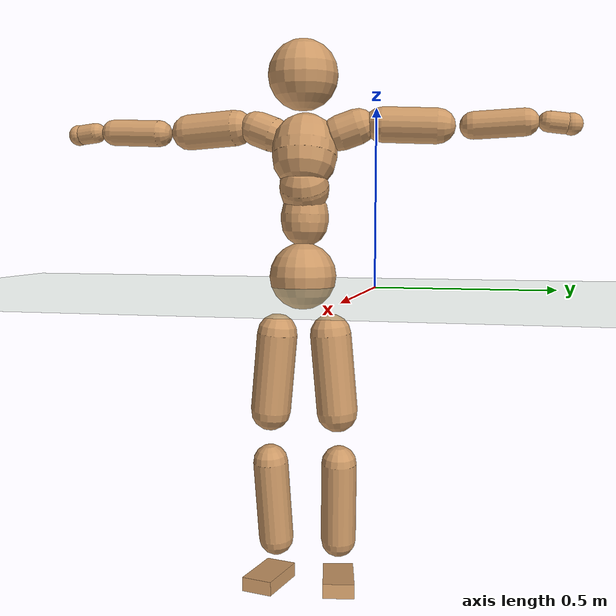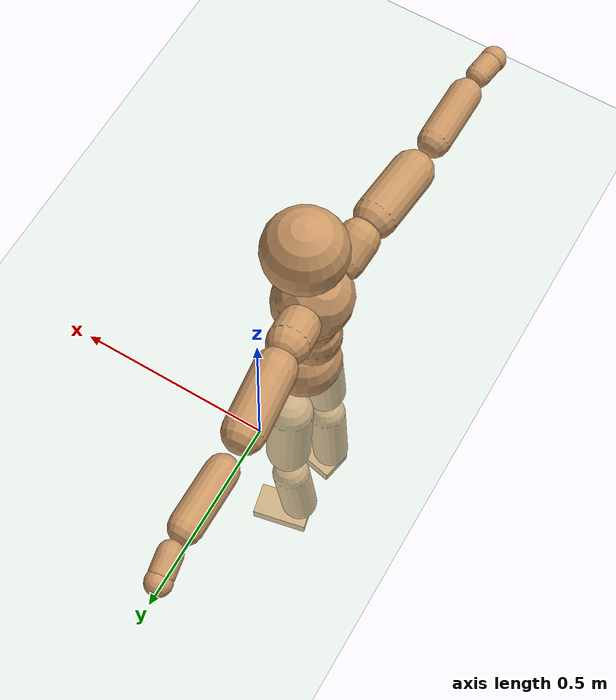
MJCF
<mujoco model="humanoid">
  <compiler coordinate="local"/>
  <default>
    <joint damping="0.0" armature="0.01" stiffness="0.0" limited="true"/>
    <geom conaffinity="1" condim="3" contype="7" margin="0.001" rgba="0.8 0.6 .4 1"/>
  </default>
  <asset>
    <texture type="skybox" builtin="gradient" rgb1=".4 .5 .6" rgb2="0 0 0" width="100" height="100"/>
    <texture builtin="flat" height="1278" mark="cross" markrgb="1 1 1" name="texgeom" random="0.01" rgb1="0.8 0.6 0.4" rgb2="0.8 0.6 0.4" type="cube" width="127"/>
    <texture builtin="checker" height="100" name="texplane" rgb1="0 0 0" rgb2="0.8 0.8 0.8" type="2d" width="100"/>
    <material name="MatPlane" reflectance="0.5" shininess="1" specular="1" texrepeat="60 60" texture="texplane"/>
    <material name="geom" texture="texgeom" texuniform="true"/>
  </asset>
  <worldbody>
    <light cutoff="100" diffuse="1 1 1" dir="-0 0 -1.3" directional="true" exponent="1" pos="0 0 1.3" specular=".1 .1 .1"/>
    <geom conaffinity="1" condim="3" name="floor" pos="0 0 0" rgba="0.8 0.9 0.8 1" size="100 100 .2" type="plane" material="MatPlane"/>
    <body name="Pelvis" pos="-0.0007 -0.2122 0.029">
      <freejoint name="Pelvis"/>
      <geom type="sphere" contype="1" conaffinity="1" density="500" size="0.0970" pos="0.0000 0.0000 0.0000" name="Pelvis"/>
      <body name="L_Hip" pos="-0.0071 0.0741 -0.0929">
        <joint name="L_Hip_x" type="hinge" pos="0 0 0" axis="1 0 0" stiffness="800" damping="80" armature="0.02" range="-180.0000 180.0000"/>
        <joint name="L_Hip_y" type="hinge" pos="0 0 0" axis="0 1 0" stiffness="800" damping="80" armature="0.02" range="-180.0000 180.0000"/>
        <joint name="L_Hip_z" type="hinge" pos="0 0 0" axis="0 0 1" stiffness="800" damping="80" armature="0.02" range="-180.0000 180.0000"/>
        <geom type="capsule" contype="1" conaffinity="1" density="500" fromto="-0.0023 0.0062 -0.0766 -0.0094 0.0250 -0.3063" size="0.0604" name="L_Hip"/>
        <body name="L_Knee" pos="-0.0117 0.0312 -0.3829">
          <joint name="L_Knee_x" type="hinge" pos="0 0 0" axis="1 0 0" stiffness="800" damping="80" armature="0.02" range="-180.0000 180.0000"/>
          <joint name="L_Knee_y" type="hinge" pos="0 0 0" axis="0 1 0" stiffness="800" damping="80" armature="0.02" range="-180.0000 180.0000"/>
          <joint name="L_Knee_z" type="hinge" pos="0 0 0" axis="0 0 1" stiffness="800" damping="80" armature="0.02" range="-180.0000 180.0000"/>
          <geom type="capsule" contype="1" conaffinity="1" density="500" fromto="-0.0092 -0.0024 -0.0818 -0.0367 -0.0096 -0.3271" size="0.0524" name="L_Knee"/>
          <body name="L_Ankle" pos="-0.0458 -0.012 -0.4089">
            <joint name="L_Ankle_x" type="hinge" pos="0 0 0" axis="1 0 0" stiffness="800" damping="80" armature="0.02" range="-180.0000 180.0000"/>
            <joint name="L_Ankle_y" type="hinge" pos="0 0 0" axis="0 1 0" stiffness="800" damping="80" armature="0.02" range="-180.0000 180.0000"/>
            <joint name="L_Ankle_z" type="hinge" pos="0 0 0" axis="0 0 1" stiffness="800" damping="80" armature="0.02" range="-180.0000 180.0000"/>
            <geom type="box" contype="1" conaffinity="1" density="500" pos="0.0576 0.0125 -0.0291" size="0.0804 0.0461 0.0218" quat="0.9943 0.0000 0.0000 0.1070" name="L_Ankle"/>
            <body name="L_Toe" pos="0.1152 0.0251 -0.0582">
              <joint name="L_Toe_x" type="hinge" pos="0 0 0" axis="1 0 0" stiffness="500" damping="50" armature="0.02" range="-180.0000 180.0000"/>
              <joint name="L_Toe_y" type="hinge" pos="0 0 0" axis="0 1 0" stiffness="500" damping="50" armature="0.02" range="-180.0000 180.0000"/>
              <joint name="L_Toe_z" type="hinge" pos="0 0 0" axis="0 0 1" stiffness="500" damping="50" armature="0.02" range="-180.0000 180.0000"/>
              <geom type="box" contype="1" conaffinity="1" density="500" pos="0.0000 0.0000 0.0281" size="0.001 0.0023 0.001" quat="0.9936 0.0000 0.0000 0.1133" name="L_Toe"/>
            </body>
          </body>
        </body>
      </body>
      <body name="R_Hip" pos="-0.0026 -0.0718 -0.0932">
        <joint name="R_Hip_x" type="hinge" pos="0 0 0" axis="1 0 0" stiffness="800" damping="80" armature="0.02" range="-180.0000 180.0000"/>
        <joint name="R_Hip_y" type="hinge" pos="0 0 0" axis="0 1 0" stiffness="800" damping="80" armature="0.02" range="-180.0000 180.0000"/>
        <joint name="R_Hip_z" type="hinge" pos="0 0 0" axis="0 0 1" stiffness="800" damping="80" armature="0.02" range="-180.0000 180.0000"/>
        <geom type="capsule" contype="1" conaffinity="1" density="500" fromto="-0.0027 -0.0078 -0.0778 -0.0107 -0.0311 -0.3113" size="0.0595" name="R_Hip"/>
        <body name="R_Knee" pos="-0.0133 -0.0389 -0.3892">
          <joint name="R_Knee_x" type="hinge" pos="0 0 0" axis="1 0 0" stiffness="800" damping="80" armature="0.02" range="-180.0000 180.0000"/>
          <joint name="R_Knee_y" type="hinge" pos="0 0 0" axis="0 1 0" stiffness="800" damping="80" armature="0.02" range="-180.0000 180.0000"/>
          <joint name="R_Knee_z" type="hinge" pos="0 0 0" axis="0 0 1" stiffness="800" damping="80" armature="0.02" range="-180.0000 180.0000"/>
          <geom type="capsule" contype="1" conaffinity="1" density="500" fromto="-0.0086 0.0031 -0.0821 -0.0345 0.0123 -0.3286" size="0.0527" name="R_Knee"/>
          <body name="R_Ankle" pos="-0.0431 0.0154 -0.4107">
            <joint name="R_Ankle_x" type="hinge" pos="0 0 0" axis="1 0 0" stiffness="800" damping="80" armature="0.02" range="-180.0000 180.0000"/>
            <joint name="R_Ankle_y" type="hinge" pos="0 0 0" axis="0 1 0" stiffness="800" damping="80" armature="0.02" range="-180.0000 180.0000"/>
            <joint name="R_Ankle_z" type="hinge" pos="0 0 0" axis="0 0 1" stiffness="800" damping="80" armature="0.02" range="-180.0000 180.0000"/>
            <geom type="box" contype="1" conaffinity="1" density="500" pos="0.0598 -0.0119 -0.0252" size="0.0833 0.0469 0.0212" quat="0.9952 0.0000 0.0000 -0.0978" name="R_Ankle"/>
            <body name="R_Toe" pos="0.1196 -0.0237 -0.0504">
              <joint name="R_Toe_x" type="hinge" pos="0 0 0" axis="1 0 0" stiffness="500" damping="50" armature="0.02" range="-180.0000 180.0000"/>
              <joint name="R_Toe_y" type="hinge" pos="0 0 0" axis="0 1 0" stiffness="500" damping="50" armature="0.02" range="-180.0000 180.0000"/>
              <joint name="R_Toe_z" type="hinge" pos="0 0 0" axis="0 0 1" stiffness="500" damping="50" armature="0.02" range="-180.0000 180.0000"/>
              <geom type="box" contype="1" conaffinity="1" density="500" pos="0.0000 0.0000 0.0267" size="0.0009 0.0023 0.0011" quat="0.9961 0.0000 0.0000 -0.0883" name="R_Toe"/>
            </body>
          </body>
        </body>
      </body>
      <body name="Torso" pos="-0.0235 -0.0019 0.1065">
        <joint name="Torso_x" type="hinge" pos="0 0 0" axis="1 0 0" stiffness="1000" damping="100" armature="0.02" range="-180.0000 180.0000"/>
        <joint name="Torso_y" type="hinge" pos="0 0 0" axis="0 1 0" stiffness="1000" damping="100" armature="0.02" range="-180.0000 180.0000"/>
        <joint name="Torso_z" type="hinge" pos="0 0 0" axis="0 0 1" stiffness="1000" damping="100" armature="0.02" range="-180.0000 180.0000"/>
        <geom type="capsule" contype="1" conaffinity="1" density="500" fromto="0.0004 0.0019 0.0734 0.0003 0.0013 0.0489" size="0.069564" name="Torso"/>
        <body name="Spine" pos="0.0006 0.0032 0.1224">
          <joint name="Spine_x" type="hinge" pos="0 0 0" axis="1 0 0" stiffness="1000" damping="100" armature="0.02" range="-180.0000 180.0000"/>
          <joint name="Spine_y" type="hinge" pos="0 0 0" axis="0 1 0" stiffness="1000" damping="100" armature="0.02" range="-180.0000 180.0000"/>
          <joint name="Spine_z" type="hinge" pos="0 0 0" axis="0 0 1" stiffness="1000" damping="100" armature="0.02" range="-180.0000 180.0000"/>
          <geom type="capsule" contype="1" conaffinity="1" density="500" fromto="0.0179 0.0010 0.0304 0.0119 0.0006 0.0202" size="0.071796" name="Spine"/>
          <body name="Chest" pos="0.0298 0.0016 0.0506">
            <joint name="Chest_x" type="hinge" pos="0 0 0" axis="1 0 0" stiffness="1000" damping="100" armature="0.02" range="-180.0000 180.0000"/>
            <joint name="Chest_y" type="hinge" pos="0 0 0" axis="0 1 0" stiffness="1000" damping="100" armature="0.02" range="-180.0000 180.0000"/>
            <joint name="Chest_z" type="hinge" pos="0 0 0" axis="0 0 1" stiffness="1000" damping="100" armature="0.02" range="-180.0000 180.0000"/>
            <geom type="capsule" contype="1" conaffinity="1" density="500" fromto="-0.0278 -0.0011 0.0932 -0.0185 -0.0007 0.0621" size="0.094488" name="Chest"/>
            <body name="Neck" pos="-0.0541 -0.0031 0.2208">
              <joint name="Neck_x" type="hinge" pos="0 0 0" axis="1 0 0" stiffness="500" damping="50" armature="0.02" range="-180.0000 180.0000"/>
              <joint name="Neck_y" type="hinge" pos="0 0 0" axis="0 1 0" stiffness="500" damping="50" armature="0.02" range="-180.0000 180.0000"/>
              <joint name="Neck_z" type="hinge" pos="0 0 0" axis="0 0 1" stiffness="500" damping="50" armature="0.02" range="-180.0000 180.0000"/>
              <geom type="capsule" contype="1" conaffinity="1" density="500" fromto="0.0108 0.0007 0.0136 0.0433 0.0027 0.0543" size="0.039711" name="Neck"/>
              <body name="Head" pos="0.0542 0.0034 0.0678">
                <joint name="Head_x" type="hinge" pos="0 0 0" axis="1 0 0" stiffness="500" damping="50" armature="0.02" range="-180.0000 180.0000"/>
                <joint name="Head_y" type="hinge" pos="0 0 0" axis="0 1 0" stiffness="500" damping="50" armature="0.02" range="-180.0000 180.0000"/>
                <joint name="Head_z" type="hinge" pos="0 0 0" axis="0 0 1" stiffness="500" damping="50" armature="0.02" range="-180.0000 180.0000"/>
                <geom type="sphere" contype="1" conaffinity="1" density="500" size="0.0999" pos="0.0000 0.0000 0.0000" name="Head"/>
              </body>
            </body>
            <body name="L_Thorax" pos="-0.0404 0.0798 0.1233">
              <joint name="L_Thorax_x" type="hinge" pos="0 0 0" axis="1 0 0" stiffness="500" damping="50" armature="0.02" range="-180.0000 180.0000"/>
              <joint name="L_Thorax_y" type="hinge" pos="0 0 0" axis="0 1 0" stiffness="500" damping="50" armature="0.02" range="-180.0000 180.0000"/>
              <joint name="L_Thorax_z" type="hinge" pos="0 0 0" axis="0 0 1" stiffness="500" damping="50" armature="0.02" range="-180.0000 180.0000"/>
              <geom type="capsule" contype="1" conaffinity="1" density="500" fromto="-0.0020 0.0173 0.0061 -0.0078 0.0692 0.0243" size="0.0515" name="L_Thorax"/>
              <body name="L_Shoulder" pos="-0.0098 0.0864 0.0304">
                <joint name="L_Shoulder_x" type="hinge" pos="0 0 0" axis="1 0 0" stiffness="500" damping="50" armature="0.02" range="-720.0000 720.0000"/>
                <joint name="L_Shoulder_y" type="hinge" pos="0 0 0" axis="0 1 0" stiffness="500" damping="50" armature="0.02" range="-720.0000 720.0000"/>
                <joint name="L_Shoulder_z" type="hinge" pos="0 0 0" axis="0 0 1" stiffness="500" damping="50" armature="0.02" range="-720.0000 720.0000"/>
                <geom type="capsule" contype="1" conaffinity="1" density="500" fromto="-0.0053 0.0517 -0.0019 -0.0212 0.2069 -0.0078" size="0.0508" name="L_Shoulder"/>
                <body name="L_Elbow" pos="-0.0265 0.2587 -0.0097">
                  <joint name="L_Elbow_x" type="hinge" pos="0 0 0" axis="1 0 0" stiffness="500" damping="50" armature="0.02" range="-720.0000 720.0000"/>
                  <joint name="L_Elbow_y" type="hinge" pos="0 0 0" axis="0 1 0" stiffness="500" damping="50" armature="0.02" range="-720.0000 720.0000"/>
                  <joint name="L_Elbow_z" type="hinge" pos="0 0 0" axis="0 0 1" stiffness="500" damping="50" armature="0.02" range="-720.0000 720.0000"/>
                  <geom type="capsule" contype="1" conaffinity="1" density="500" fromto="-0.0002 0.0472 0.0019 -0.0008 0.1887 0.0078" size="0.0391" name="L_Elbow"/>
                  <body name="L_Wrist" pos="-0.001 0.2359 0.0097">
                    <joint name="L_Wrist_x" type="hinge" pos="0 0 0" axis="1 0 0" stiffness="300" damping="30" armature="0.02" range="-180.0000 180.0000"/>
                    <joint name="L_Wrist_y" type="hinge" pos="0 0 0" axis="0 1 0" stiffness="300" damping="30" armature="0.02" range="-180.0000 180.0000"/>
                    <joint name="L_Wrist_z" type="hinge" pos="0 0 0" axis="0 0 1" stiffness="300" damping="30" armature="0.02" range="-180.0000 180.0000"/>
                    <geom type="capsule" contype="1" conaffinity="1" density="500" fromto="-0.0025 0.0154 -0.0018 -0.0102 0.0617 -0.0074" size="0.0293" name="L_Wrist"/>
                    <body name="L_Hand" pos="-0.0127 0.0771 -0.0092">
                      <joint name="L_Hand_x" type="hinge" pos="0 0 0" axis="1 0 0" stiffness="300" damping="30" armature="0.02" range="-180.0000 180.0000"/>
                      <joint name="L_Hand_y" type="hinge" pos="0 0 0" axis="0 1 0" stiffness="300" damping="30" armature="0.02" range="-180.0000 180.0000"/>
                      <joint name="L_Hand_z" type="hinge" pos="0 0 0" axis="0 0 1" stiffness="300" damping="30" armature="0.02" range="-180.0000 180.0000"/>
                      <geom type="sphere" contype="1" conaffinity="1" density="500" size="0.0311" pos="0.0000 0.0000 0.0000" name="L_Hand"/>
                    </body>
                  </body>
                </body>
              </body>
            </body>
            <body name="R_Thorax" pos="-0.0446 -0.082 0.1218">
              <joint name="R_Thorax_x" type="hinge" pos="0 0 0" axis="1 0 0" stiffness="500" damping="50" armature="0.02" range="-180.0000 180.0000"/>
              <joint name="R_Thorax_y" type="hinge" pos="0 0 0" axis="0 1 0" stiffness="500" damping="50" armature="0.02" range="-180.0000 180.0000"/>
              <joint name="R_Thorax_z" type="hinge" pos="0 0 0" axis="0 0 1" stiffness="500" damping="50" armature="0.02" range="-180.0000 180.0000"/>
              <geom type="capsule" contype="1" conaffinity="1" density="500" fromto="-0.0021 -0.0176 0.0068 -0.0085 -0.0704 0.0270" size="0.0505" name="R_Thorax"/>
              <body name="R_Shoulder" pos="-0.0106 -0.088 0.0338">
                <joint name="R_Shoulder_x" type="hinge" pos="0 0 0" axis="1 0 0" stiffness="500" damping="50" armature="0.02" range="-720.0000 720.0000"/>
                <joint name="R_Shoulder_y" type="hinge" pos="0 0 0" axis="0 1 0" stiffness="500" damping="50" armature="0.02" range="-720.0000 720.0000"/>
                <joint name="R_Shoulder_z" type="hinge" pos="0 0 0" axis="0 0 1" stiffness="500" damping="50" armature="0.02" range="-720.0000 720.0000"/>
                <geom type="capsule" contype="1" conaffinity="1" density="500" fromto="-0.0042 -0.0500 -0.0029 -0.0167 -0.1998 -0.0115" size="0.0528" name="R_Shoulder"/>
                <body name="R_Elbow" pos="-0.0208 -0.2498 -0.0144">
                  <joint name="R_Elbow_x" type="hinge" pos="0 0 0" axis="1 0 0" stiffness="500" damping="50" armature="0.02" range="-720.0000 720.0000"/>
                  <joint name="R_Elbow_y" type="hinge" pos="0 0 0" axis="0 1 0" stiffness="500" damping="50" armature="0.02" range="-720.0000 720.0000"/>
                  <joint name="R_Elbow_z" type="hinge" pos="0 0 0" axis="0 0 1" stiffness="500" damping="50" armature="0.02" range="-720.0000 720.0000"/>
                  <geom type="capsule" contype="1" conaffinity="1" density="500" fromto="-0.0008 -0.0491 0.0021 -0.0034 -0.1964 0.0085" size="0.0398" name="R_Elbow"/>
                  <body name="R_Wrist" pos="-0.0042 -0.2454 0.0106">
                    <joint name="R_Wrist_x" type="hinge" pos="0 0 0" axis="1 0 0" stiffness="300" damping="30" armature="0.02" range="-180.0000 180.0000"/>
                    <joint name="R_Wrist_y" type="hinge" pos="0 0 0" axis="0 1 0" stiffness="300" damping="30" armature="0.02" range="-180.0000 180.0000"/>
                    <joint name="R_Wrist_z" type="hinge" pos="0 0 0" axis="0 0 1" stiffness="300" damping="30" armature="0.02" range="-180.0000 180.0000"/>
                    <geom type="capsule" contype="1" conaffinity="1" density="500" fromto="-0.0020 -0.0156 -0.0014 -0.0080 -0.0625 -0.0057" size="0.0302" name="R_Wrist"/>
                    <body name="R_Hand" pos="-0.0101 -0.0781 -0.0071">
                      <joint name="R_Hand_x" type="hinge" pos="0 0 0" axis="1 0 0" stiffness="300" damping="30" armature="0.02" range="-180.0000 180.0000"/>
                      <joint name="R_Hand_y" type="hinge" pos="0 0 0" axis="0 1 0" stiffness="300" damping="30" armature="0.02" range="-180.0000 180.0000"/>
                      <joint name="R_Hand_z" type="hinge" pos="0 0 0" axis="0 0 1" stiffness="300" damping="30" armature="0.02" range="-180.0000 180.0000"/>
                      <geom type="sphere" contype="1" conaffinity="1" density="500" size="0.0315" pos="0.0000 0.0000 0.0000" name="R_Hand"/>
                    </body>
                  </body>
                </body>
              </body>
            </body>
          </body>
        </body>
      </body>
    </body>
  </worldbody>
  <actuator>
    <motor name="L_Hip_x" joint="L_Hip_x" gear="500"/>
    <motor name="L_Hip_y" joint="L_Hip_y" gear="500"/>
    <motor name="L_Hip_z" joint="L_Hip_z" gear="500"/>
    <motor name="L_Knee_x" joint="L_Knee_x" gear="500"/>
    <motor name="L_Knee_y" joint="L_Knee_y" gear="500"/>
    <motor name="L_Knee_z" joint="L_Knee_z" gear="500"/>
    <motor name="L_Ankle_x" joint="L_Ankle_x" gear="500"/>
    <motor name="L_Ankle_y" joint="L_Ankle_y" gear="500"/>
    <motor name="L_Ankle_z" joint="L_Ankle_z" gear="500"/>
    <motor name="L_Toe_x" joint="L_Toe_x" gear="500"/>
    <motor name="L_Toe_y" joint="L_Toe_y" gear="500"/>
    <motor name="L_Toe_z" joint="L_Toe_z" gear="500"/>
    <motor name="R_Hip_x" joint="R_Hip_x" gear="500"/>
    <motor name="R_Hip_y" joint="R_Hip_y" gear="500"/>
    <motor name="R_Hip_z" joint="R_Hip_z" gear="500"/>
    <motor name="R_Knee_x" joint="R_Knee_x" gear="500"/>
    <motor name="R_Knee_y" joint="R_Knee_y" gear="500"/>
    <motor name="R_Knee_z" joint="R_Knee_z" gear="500"/>
    <motor name="R_Ankle_x" joint="R_Ankle_x" gear="500"/>
    <motor name="R_Ankle_y" joint="R_Ankle_y" gear="500"/>
    <motor name="R_Ankle_z" joint="R_Ankle_z" gear="500"/>
    <motor name="R_Toe_x" joint="R_Toe_x" gear="500"/>
    <motor name="R_Toe_y" joint="R_Toe_y" gear="500"/>
    <motor name="R_Toe_z" joint="R_Toe_z" gear="500"/>
    <motor name="Torso_x" joint="Torso_x" gear="500"/>
    <motor name="Torso_y" joint="Torso_y" gear="500"/>
    <motor name="Torso_z" joint="Torso_z" gear="500"/>
    <motor name="Spine_x" joint="Spine_x" gear="500"/>
    <motor name="Spine_y" joint="Spine_y" gear="500"/>
    <motor name="Spine_z" joint="Spine_z" gear="500"/>
    <motor name="Chest_x" joint="Chest_x" gear="500"/>
    <motor name="Chest_y" joint="Chest_y" gear="500"/>
    <motor name="Chest_z" joint="Chest_z" gear="500"/>
    <motor name="Neck_x" joint="Neck_x" gear="500"/>
    <motor name="Neck_y" joint="Neck_y" gear="500"/>
    <motor name="Neck_z" joint="Neck_z" gear="500"/>
    <motor name="Head_x" joint="Head_x" gear="500"/>
    <motor name="Head_y" joint="Head_y" gear="500"/>
    <motor name="Head_z" joint="Head_z" gear="500"/>
    <motor name="L_Thorax_x" joint="L_Thorax_x" gear="500"/>
    <motor name="L_Thorax_y" joint="L_Thorax_y" gear="500"/>
    <motor name="L_Thorax_z" joint="L_Thorax_z" gear="500"/>
    <motor name="L_Shoulder_x" joint="L_Shoulder_x" gear="500"/>
    <motor name="L_Shoulder_y" joint="L_Shoulder_y" gear="500"/>
    <motor name="L_Shoulder_z" joint="L_Shoulder_z" gear="500"/>
    <motor name="L_Elbow_x" joint="L_Elbow_x" gear="500"/>
    <motor name="L_Elbow_y" joint="L_Elbow_y" gear="500"/>
    <motor name="L_Elbow_z" joint="L_Elbow_z" gear="500"/>
    <motor name="L_Wrist_x" joint="L_Wrist_x" gear="500"/>
    <motor name="L_Wrist_y" joint="L_Wrist_y" gear="500"/>
    <motor name="L_Wrist_z" joint="L_Wrist_z" gear="500"/>
    <motor name="L_Hand_x" joint="L_Hand_x" gear="500"/>
    <motor name="L_Hand_y" joint="L_Hand_y" gear="500"/>
    <motor name="L_Hand_z" joint="L_Hand_z" gear="500"/>
    <motor name="R_Thorax_x" joint="R_Thorax_x" gear="500"/>
    <motor name="R_Thorax_y" joint="R_Thorax_y" gear="500"/>
    <motor name="R_Thorax_z" joint="R_Thorax_z" gear="500"/>
    <motor name="R_Shoulder_x" joint="R_Shoulder_x" gear="500"/>
    <motor name="R_Shoulder_y" joint="R_Shoulder_y" gear="500"/>
    <motor name="R_Shoulder_z" joint="R_Shoulder_z" gear="500"/>
    <motor name="R_Elbow_x" joint="R_Elbow_x" gear="500"/>
    <motor name="R_Elbow_y" joint="R_Elbow_y" gear="500"/>
    <motor name="R_Elbow_z" joint="R_Elbow_z" gear="500"/>
    <motor name="R_Wrist_x" joint="R_Wrist_x" gear="500"/>
    <motor name="R_Wrist_y" joint="R_Wrist_y" gear="500"/>
    <motor name="R_Wrist_z" joint="R_Wrist_z" gear="500"/>
    <motor name="R_Hand_x" joint="R_Hand_x" gear="500"/>
    <motor name="R_Hand_y" joint="R_Hand_y" gear="500"/>
    <motor name="R_Hand_z" joint="R_Hand_z" gear="500"/>
  </actuator>
  <contact>
    <exclude body1="Torso" body2="Chest"/>
    <exclude body1="Head" body2="Chest"/>
    <exclude body1="R_Knee" body2="R_Toe"/>
    <exclude body1="R_Knee" body2="L_Ankle"/>
    <exclude body1="R_Knee" body2="L_Toe"/>
    <exclude body1="L_Knee" body2="L_Toe"/>
    <exclude body1="L_Knee" body2="R_Ankle"/>
    <exclude body1="L_Knee" body2="R_Toe"/>
    <exclude body1="L_Shoulder" body2="Chest"/>
    <exclude body1="R_Shoulder" body2="Chest"/>
  </contact>
  <sensor/>
  <size njmax="700" nconmax="700"/>
</mujoco>
